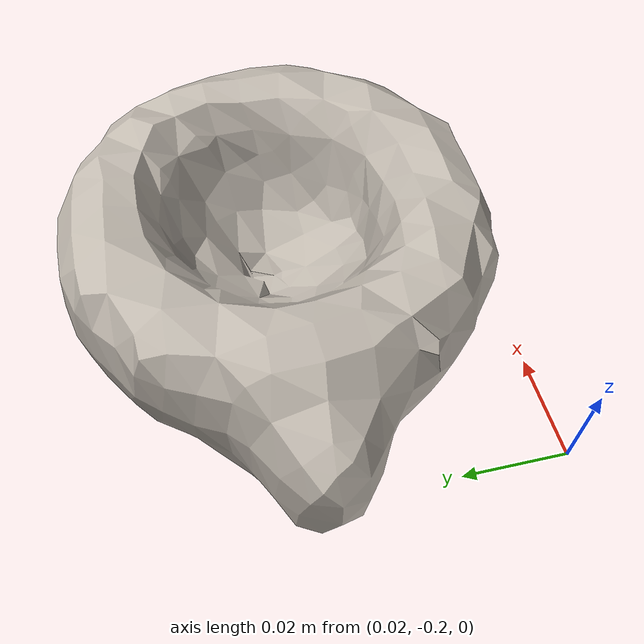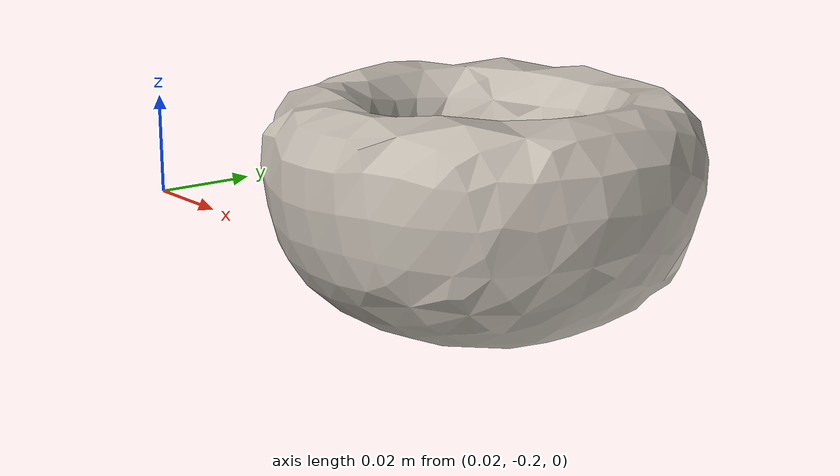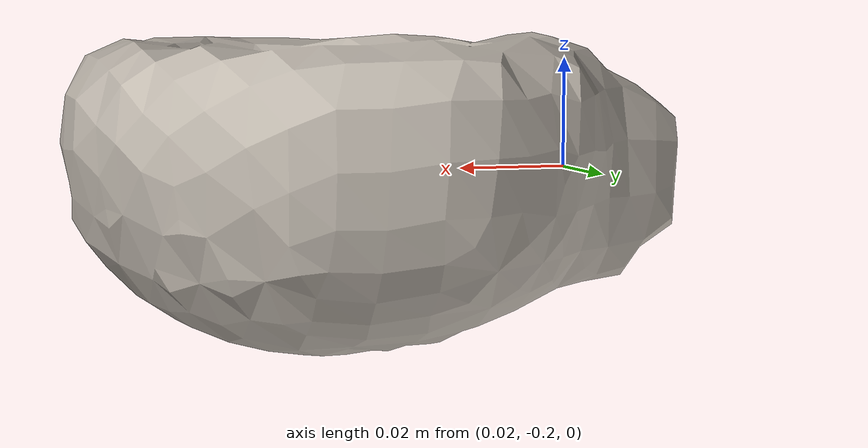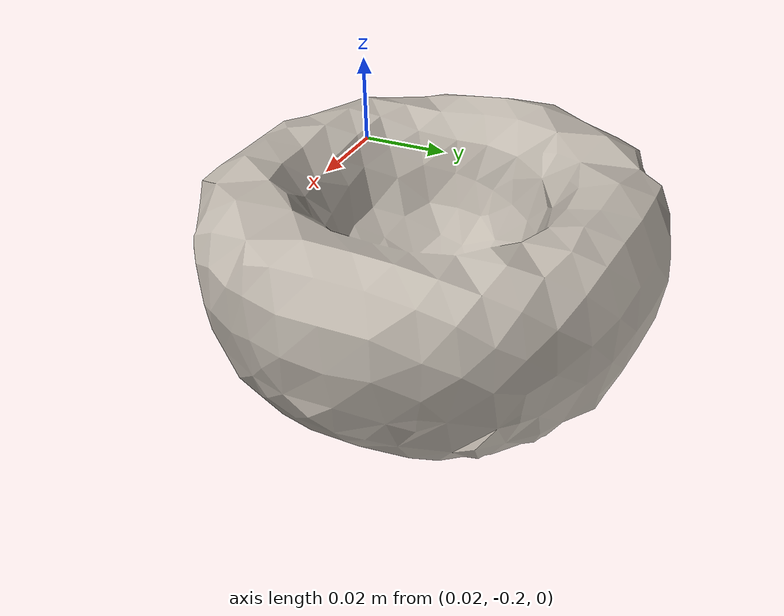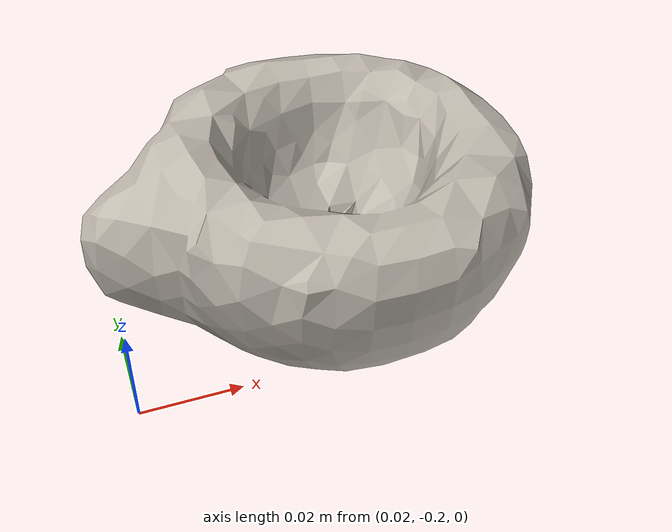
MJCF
<mujoco model="mug_frl_apartment_cup_05_M">
  <asset>
    <mesh file="meshes/mug_frl_apartment_cup_05_M.stl" name="mug_mesh" scale="0.6047861736925548 0.6047861736925548 0.6047861736925548"/>
    <texture type="cube" file="/home/jbw/Projects/gc-reorientation/bin_env/assets/textures/ceramic.png" rgb1="1 1 1" name="tex-mug"/>
    <material name="mug" reflectance="0.5" texrepeat="3 3" texture="tex-mug"/>
  </asset>
  <worldbody>
    <body>
      <body name="object">
        <geom pos="0.07122993804940478 -0.15805905573235046 0.0005410713178523718" quat="1 0 0 0" mesh="mug_mesh" type="mesh" solref="0.02 1" density="0" friction="1.0 1.0 1.0" material="mug" group="0" condim="4"/>
      </body>
      <site rgba="0 0 0 0" size="0.005" pos="0 0 -0.05" name="bottom_site"/>
      <site rgba="0 0 0 0" size="0.005" pos="0 0 0.03" name="top_site"/>
      <site rgba="0 0 0 0" size="0.005" pos="0.02 0.015 0" name="horizontal_radius_site"/>
    </body>
  </worldbody>
</mujoco>
